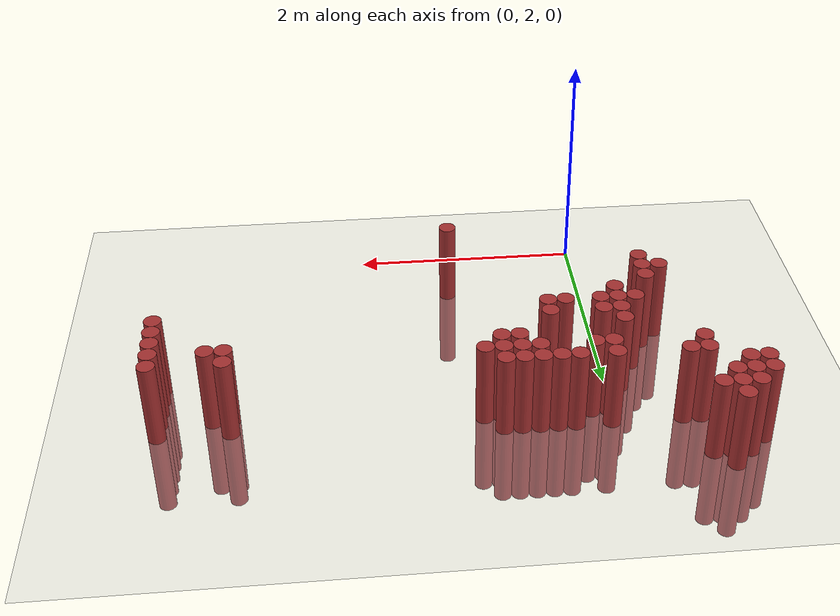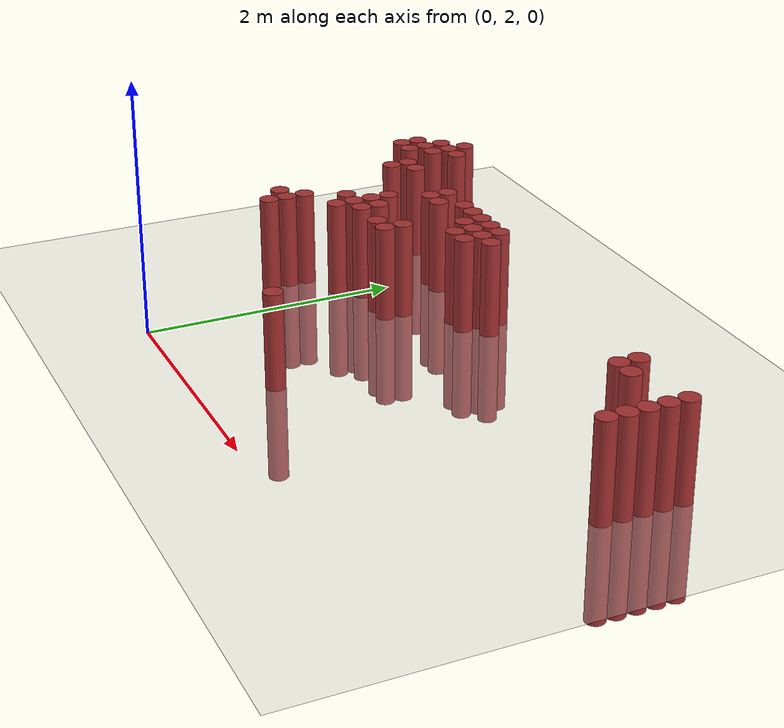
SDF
<sdf version="1.6">
 <world name="default">
  <model name="ground_plane">
   <static>1</static>
   <link name="link">
    <collision name="collision">
     <geometry><plane><normal>0 0 1</normal><size>100 100</size></plane></geometry>
     <surface><friction><ode><mu>100</mu><mu2>50</mu2></ode></friction></surface>
    </collision>
    <visual name="visual">
     <cast_shadows>0</cast_shadows>
     <geometry><plane><normal>0 0 1</normal><size>100 100</size></plane></geometry>
     <material>
      <script><uri>file://media/materials/scripts/gazebo.material</uri><name>Gazebo/Grey</name></script>
     </material>
    </visual>
   </link>
  </model>
  <model name="unit_cylinder_327">
   <static>1</static>
   <pose>-1.175000 4.675000 0.000000 0.000000 0.000000 0.000000</pose>
   <link name="link">
    <inertial>
     <mass>1</mass>
     <inertia><ixx>0.145833</ixx><ixy>0</ixy><ixz>0</ixz><iyy>0.145833</iyy><iyz>0</iyz><izz>0.125</izz></inertia>
    </inertial>
    <collision name="collision">
     <geometry><cylinder><radius>0.075000</radius><length>1.5</length></cylinder></geometry>
    </collision>
    <visual name="visual">
     <geometry><cylinder><radius>0.075000</radius><length>1.5</length></cylinder></geometry>
     <material>
      <ambient>0.648000 0.192000 0.192000 1</ambient>
      <diffuse>0.648000 0.192000 0.192000 1</diffuse>
     </material>
     <material>
      <script><name>Gazebo/Grey</name><uri>file://media/materials/scripts/gazebo.material</uri></script>
     </material>
    </visual>
   </link>
  </model>
  <model name="unit_cylinder_328">
   <static>1</static>
   <pose>-1.175000 4.825000 0.000000 0.000000 0.000000 0.000000</pose>
   <link name="link">
    <inertial>
     <mass>1</mass>
     <inertia><ixx>0.145833</ixx><ixy>0</ixy><ixz>0</ixz><iyy>0.145833</iyy><iyz>0</iyz><izz>0.125</izz></inertia>
    </inertial>
    <collision name="collision">
     <geometry><cylinder><radius>0.075000</radius><length>1.5</length></cylinder></geometry>
    </collision>
    <visual name="visual">
     <geometry><cylinder><radius>0.075000</radius><length>1.5</length></cylinder></geometry>
     <material>
      <ambient>0.648000 0.192000 0.192000 1</ambient>
      <diffuse>0.648000 0.192000 0.192000 1</diffuse>
     </material>
     <material>
      <script><name>Gazebo/Grey</name><uri>file://media/materials/scripts/gazebo.material</uri></script>
     </material>
    </visual>
   </link>
  </model>
  <model name="unit_cylinder_329">
   <static>1</static>
   <pose>-1.025000 4.675000 0.000000 0.000000 0.000000 0.000000</pose>
   <link name="link">
    <inertial>
     <mass>1</mass>
     <inertia><ixx>0.145833</ixx><ixy>0</ixy><ixz>0</ixz><iyy>0.145833</iyy><iyz>0</iyz><izz>0.125</izz></inertia>
    </inertial>
    <collision name="collision">
     <geometry><cylinder><radius>0.075000</radius><length>1.5</length></cylinder></geometry>
    </collision>
    <visual name="visual">
     <geometry><cylinder><radius>0.075000</radius><length>1.5</length></cylinder></geometry>
     <material>
      <ambient>0.648000 0.192000 0.192000 1</ambient>
      <diffuse>0.648000 0.192000 0.192000 1</diffuse>
     </material>
     <material>
      <script><name>Gazebo/Grey</name><uri>file://media/materials/scripts/gazebo.material</uri></script>
     </material>
    </visual>
   </link>
  </model>
  <model name="unit_cylinder_330">
   <static>1</static>
   <pose>-1.025000 4.825000 0.000000 0.000000 0.000000 0.000000</pose>
   <link name="link">
    <inertial>
     <mass>1</mass>
     <inertia><ixx>0.145833</ixx><ixy>0</ixy><ixz>0</ixz><iyy>0.145833</iyy><iyz>0</iyz><izz>0.125</izz></inertia>
    </inertial>
    <collision name="collision">
     <geometry><cylinder><radius>0.075000</radius><length>1.5</length></cylinder></geometry>
    </collision>
    <visual name="visual">
     <geometry><cylinder><radius>0.075000</radius><length>1.5</length></cylinder></geometry>
     <material>
      <ambient>0.648000 0.192000 0.192000 1</ambient>
      <diffuse>0.648000 0.192000 0.192000 1</diffuse>
     </material>
     <material>
      <script><name>Gazebo/Grey</name><uri>file://media/materials/scripts/gazebo.material</uri></script>
     </material>
    </visual>
   </link>
  </model>
  <model name="unit_cylinder_331">
   <static>1</static>
   <pose>-1.025000 4.975000 0.000000 0.000000 0.000000 0.000000</pose>
   <link name="link">
    <inertial>
     <mass>1</mass>
     <inertia><ixx>0.145833</ixx><ixy>0</ixy><ixz>0</ixz><iyy>0.145833</iyy><iyz>0</iyz><izz>0.125</izz></inertia>
    </inertial>
    <collision name="collision">
     <geometry><cylinder><radius>0.075000</radius><length>1.5</length></cylinder></geometry>
    </collision>
    <visual name="visual">
     <geometry><cylinder><radius>0.075000</radius><length>1.5</length></cylinder></geometry>
     <material>
      <ambient>0.648000 0.192000 0.192000 1</ambient>
      <diffuse>0.648000 0.192000 0.192000 1</diffuse>
     </material>
     <material>
      <script><name>Gazebo/Grey</name><uri>file://media/materials/scripts/gazebo.material</uri></script>
     </material>
    </visual>
   </link>
  </model>
  <model name="unit_cylinder_334">
   <static>1</static>
   <pose>-0.875000 4.825000 0.000000 0.000000 0.000000 0.000000</pose>
   <link name="link">
    <inertial>
     <mass>1</mass>
     <inertia><ixx>0.145833</ixx><ixy>0</ixy><ixz>0</ixz><iyy>0.145833</iyy><iyz>0</iyz><izz>0.125</izz></inertia>
    </inertial>
    <collision name="collision">
     <geometry><cylinder><radius>0.075000</radius><length>1.5</length></cylinder></geometry>
    </collision>
    <visual name="visual">
     <geometry><cylinder><radius>0.075000</radius><length>1.5</length></cylinder></geometry>
     <material>
      <ambient>0.648000 0.192000 0.192000 1</ambient>
      <diffuse>0.648000 0.192000 0.192000 1</diffuse>
     </material>
     <material>
      <script><name>Gazebo/Grey</name><uri>file://media/materials/scripts/gazebo.material</uri></script>
     </material>
    </visual>
   </link>
  </model>
  <model name="unit_cylinder_335">
   <static>1</static>
   <pose>-0.875000 4.975000 0.000000 0.000000 0.000000 0.000000</pose>
   <link name="link">
    <inertial>
     <mass>1</mass>
     <inertia><ixx>0.145833</ixx><ixy>0</ixy><ixz>0</ixz><iyy>0.145833</iyy><iyz>0</iyz><izz>0.125</izz></inertia>
    </inertial>
    <collision name="collision">
     <geometry><cylinder><radius>0.075000</radius><length>1.5</length></cylinder></geometry>
    </collision>
    <visual name="visual">
     <geometry><cylinder><radius>0.075000</radius><length>1.5</length></cylinder></geometry>
     <material>
      <ambient>0.648000 0.192000 0.192000 1</ambient>
      <diffuse>0.648000 0.192000 0.192000 1</diffuse>
     </material>
     <material>
      <script><name>Gazebo/Grey</name><uri>file://media/materials/scripts/gazebo.material</uri></script>
     </material>
    </visual>
   </link>
  </model>
  <model name="unit_cylinder_336">
   <static>1</static>
   <pose>-0.875000 5.125000 0.000000 0.000000 0.000000 0.000000</pose>
   <link name="link">
    <inertial>
     <mass>1</mass>
     <inertia><ixx>0.145833</ixx><ixy>0</ixy><ixz>0</ixz><iyy>0.145833</iyy><iyz>0</iyz><izz>0.125</izz></inertia>
    </inertial>
    <collision name="collision">
     <geometry><cylinder><radius>0.075000</radius><length>1.5</length></cylinder></geometry>
    </collision>
    <visual name="visual">
     <geometry><cylinder><radius>0.075000</radius><length>1.5</length></cylinder></geometry>
     <material>
      <ambient>0.648000 0.192000 0.192000 1</ambient>
      <diffuse>0.648000 0.192000 0.192000 1</diffuse>
     </material>
     <material>
      <script><name>Gazebo/Grey</name><uri>file://media/materials/scripts/gazebo.material</uri></script>
     </material>
    </visual>
   </link>
  </model>
  <model name="unit_cylinder_341">
   <static>1</static>
   <pose>-0.725000 4.375000 0.000000 0.000000 0.000000 0.000000</pose>
   <link name="link">
    <inertial>
     <mass>1</mass>
     <inertia><ixx>0.145833</ixx><ixy>0</ixy><ixz>0</ixz><iyy>0.145833</iyy><iyz>0</iyz><izz>0.125</izz></inertia>
    </inertial>
    <collision name="collision">
     <geometry><cylinder><radius>0.075000</radius><length>1.5</length></cylinder></geometry>
    </collision>
    <visual name="visual">
     <geometry><cylinder><radius>0.075000</radius><length>1.5</length></cylinder></geometry>
     <material>
      <ambient>0.648000 0.192000 0.192000 1</ambient>
      <diffuse>0.648000 0.192000 0.192000 1</diffuse>
     </material>
     <material>
      <script><name>Gazebo/Grey</name><uri>file://media/materials/scripts/gazebo.material</uri></script>
     </material>
    </visual>
   </link>
  </model>
  <model name="unit_cylinder_342">
   <static>1</static>
   <pose>-0.725000 4.525000 0.000000 0.000000 0.000000 0.000000</pose>
   <link name="link">
    <inertial>
     <mass>1</mass>
     <inertia><ixx>0.145833</ixx><ixy>0</ixy><ixz>0</ixz><iyy>0.145833</iyy><iyz>0</iyz><izz>0.125</izz></inertia>
    </inertial>
    <collision name="collision">
     <geometry><cylinder><radius>0.075000</radius><length>1.5</length></cylinder></geometry>
    </collision>
    <visual name="visual">
     <geometry><cylinder><radius>0.075000</radius><length>1.5</length></cylinder></geometry>
     <material>
      <ambient>0.648000 0.192000 0.192000 1</ambient>
      <diffuse>0.648000 0.192000 0.192000 1</diffuse>
     </material>
     <material>
      <script><name>Gazebo/Grey</name><uri>file://media/materials/scripts/gazebo.material</uri></script>
     </material>
    </visual>
   </link>
  </model>
  <model name="unit_cylinder_343">
   <static>1</static>
   <pose>-0.725000 4.975000 0.000000 0.000000 0.000000 0.000000</pose>
   <link name="link">
    <inertial>
     <mass>1</mass>
     <inertia><ixx>0.145833</ixx><ixy>0</ixy><ixz>0</ixz><iyy>0.145833</iyy><iyz>0</iyz><izz>0.125</izz></inertia>
    </inertial>
    <collision name="collision">
     <geometry><cylinder><radius>0.075000</radius><length>1.5</length></cylinder></geometry>
    </collision>
    <visual name="visual">
     <geometry><cylinder><radius>0.075000</radius><length>1.5</length></cylinder></geometry>
     <material>
      <ambient>0.648000 0.192000 0.192000 1</ambient>
      <diffuse>0.648000 0.192000 0.192000 1</diffuse>
     </material>
     <material>
      <script><name>Gazebo/Grey</name><uri>file://media/materials/scripts/gazebo.material</uri></script>
     </material>
    </visual>
   </link>
  </model>
  <model name="unit_cylinder_347">
   <static>1</static>
   <pose>-0.575000 3.325000 0.000000 0.000000 0.000000 0.000000</pose>
   <link name="link">
    <inertial>
     <mass>1</mass>
     <inertia><ixx>0.145833</ixx><ixy>0</ixy><ixz>0</ixz><iyy>0.145833</iyy><iyz>0</iyz><izz>0.125</izz></inertia>
    </inertial>
    <collision name="collision">
     <geometry><cylinder><radius>0.075000</radius><length>1.5</length></cylinder></geometry>
    </collision>
    <visual name="visual">
     <geometry><cylinder><radius>0.075000</radius><length>1.5</length></cylinder></geometry>
     <material>
      <ambient>0.648000 0.192000 0.192000 1</ambient>
      <diffuse>0.648000 0.192000 0.192000 1</diffuse>
     </material>
     <material>
      <script><name>Gazebo/Grey</name><uri>file://media/materials/scripts/gazebo.material</uri></script>
     </material>
    </visual>
   </link>
  </model>
  <model name="unit_cylinder_348">
   <static>1</static>
   <pose>-0.575000 4.525000 0.000000 0.000000 0.000000 0.000000</pose>
   <link name="link">
    <inertial>
     <mass>1</mass>
     <inertia><ixx>0.145833</ixx><ixy>0</ixy><ixz>0</ixz><iyy>0.145833</iyy><iyz>0</iyz><izz>0.125</izz></inertia>
    </inertial>
    <collision name="collision">
     <geometry><cylinder><radius>0.075000</radius><length>1.5</length></cylinder></geometry>
    </collision>
    <visual name="visual">
     <geometry><cylinder><radius>0.075000</radius><length>1.5</length></cylinder></geometry>
     <material>
      <ambient>0.648000 0.192000 0.192000 1</ambient>
      <diffuse>0.648000 0.192000 0.192000 1</diffuse>
     </material>
     <material>
      <script><name>Gazebo/Grey</name><uri>file://media/materials/scripts/gazebo.material</uri></script>
     </material>
    </visual>
   </link>
  </model>
  <model name="unit_cylinder_351">
   <static>1</static>
   <pose>-0.425000 3.175000 0.000000 0.000000 0.000000 0.000000</pose>
   <link name="link">
    <inertial>
     <mass>1</mass>
     <inertia><ixx>0.145833</ixx><ixy>0</ixy><ixz>0</ixz><iyy>0.145833</iyy><iyz>0</iyz><izz>0.125</izz></inertia>
    </inertial>
    <collision name="collision">
     <geometry><cylinder><radius>0.075000</radius><length>1.5</length></cylinder></geometry>
    </collision>
    <visual name="visual">
     <geometry><cylinder><radius>0.075000</radius><length>1.5</length></cylinder></geometry>
     <material>
      <ambient>0.648000 0.192000 0.192000 1</ambient>
      <diffuse>0.648000 0.192000 0.192000 1</diffuse>
     </material>
     <material>
      <script><name>Gazebo/Grey</name><uri>file://media/materials/scripts/gazebo.material</uri></script>
     </material>
    </visual>
   </link>
  </model>
  <model name="unit_cylinder_352">
   <static>1</static>
   <pose>-0.425000 3.325000 0.000000 0.000000 0.000000 0.000000</pose>
   <link name="link">
    <inertial>
     <mass>1</mass>
     <inertia><ixx>0.145833</ixx><ixy>0</ixy><ixz>0</ixz><iyy>0.145833</iyy><iyz>0</iyz><izz>0.125</izz></inertia>
    </inertial>
    <collision name="collision">
     <geometry><cylinder><radius>0.075000</radius><length>1.5</length></cylinder></geometry>
    </collision>
    <visual name="visual">
     <geometry><cylinder><radius>0.075000</radius><length>1.5</length></cylinder></geometry>
     <material>
      <ambient>0.648000 0.192000 0.192000 1</ambient>
      <diffuse>0.648000 0.192000 0.192000 1</diffuse>
     </material>
     <material>
      <script><name>Gazebo/Grey</name><uri>file://media/materials/scripts/gazebo.material</uri></script>
     </material>
    </visual>
   </link>
  </model>
  <model name="unit_cylinder_353">
   <static>1</static>
   <pose>-0.425000 3.475000 0.000000 0.000000 0.000000 0.000000</pose>
   <link name="link">
    <inertial>
     <mass>1</mass>
     <inertia><ixx>0.145833</ixx><ixy>0</ixy><ixz>0</ixz><iyy>0.145833</iyy><iyz>0</iyz><izz>0.125</izz></inertia>
    </inertial>
    <collision name="collision">
     <geometry><cylinder><radius>0.075000</radius><length>1.5</length></cylinder></geometry>
    </collision>
    <visual name="visual">
     <geometry><cylinder><radius>0.075000</radius><length>1.5</length></cylinder></geometry>
     <material>
      <ambient>0.648000 0.192000 0.192000 1</ambient>
      <diffuse>0.648000 0.192000 0.192000 1</diffuse>
     </material>
     <material>
      <script><name>Gazebo/Grey</name><uri>file://media/materials/scripts/gazebo.material</uri></script>
     </material>
    </visual>
   </link>
  </model>
  <model name="unit_cylinder_356">
   <static>1</static>
   <pose>-0.275000 3.775000 0.000000 0.000000 0.000000 0.000000</pose>
   <link name="link">
    <inertial>
     <mass>1</mass>
     <inertia><ixx>0.145833</ixx><ixy>0</ixy><ixz>0</ixz><iyy>0.145833</iyy><iyz>0</iyz><izz>0.125</izz></inertia>
    </inertial>
    <collision name="collision">
     <geometry><cylinder><radius>0.075000</radius><length>1.5</length></cylinder></geometry>
    </collision>
    <visual name="visual">
     <geometry><cylinder><radius>0.075000</radius><length>1.5</length></cylinder></geometry>
     <material>
      <ambient>0.648000 0.192000 0.192000 1</ambient>
      <diffuse>0.648000 0.192000 0.192000 1</diffuse>
     </material>
     <material>
      <script><name>Gazebo/Grey</name><uri>file://media/materials/scripts/gazebo.material</uri></script>
     </material>
    </visual>
   </link>
  </model>
  <model name="unit_cylinder_358">
   <static>1</static>
   <pose>-0.125000 3.625000 0.000000 0.000000 0.000000 0.000000</pose>
   <link name="link">
    <inertial>
     <mass>1</mass>
     <inertia><ixx>0.145833</ixx><ixy>0</ixy><ixz>0</ixz><iyy>0.145833</iyy><iyz>0</iyz><izz>0.125</izz></inertia>
    </inertial>
    <collision name="collision">
     <geometry><cylinder><radius>0.075000</radius><length>1.5</length></cylinder></geometry>
    </collision>
    <visual name="visual">
     <geometry><cylinder><radius>0.075000</radius><length>1.5</length></cylinder></geometry>
     <material>
      <ambient>0.648000 0.192000 0.192000 1</ambient>
      <diffuse>0.648000 0.192000 0.192000 1</diffuse>
     </material>
     <material>
      <script><name>Gazebo/Grey</name><uri>file://media/materials/scripts/gazebo.material</uri></script>
     </material>
    </visual>
   </link>
  </model>
  <model name="unit_cylinder_359">
   <static>1</static>
   <pose>-0.125000 3.775000 0.000000 0.000000 0.000000 0.000000</pose>
   <link name="link">
    <inertial>
     <mass>1</mass>
     <inertia><ixx>0.145833</ixx><ixy>0</ixy><ixz>0</ixz><iyy>0.145833</iyy><iyz>0</iyz><izz>0.125</izz></inertia>
    </inertial>
    <collision name="collision">
     <geometry><cylinder><radius>0.075000</radius><length>1.5</length></cylinder></geometry>
    </collision>
    <visual name="visual">
     <geometry><cylinder><radius>0.075000</radius><length>1.5</length></cylinder></geometry>
     <material>
      <ambient>0.648000 0.192000 0.192000 1</ambient>
      <diffuse>0.648000 0.192000 0.192000 1</diffuse>
     </material>
     <material>
      <script><name>Gazebo/Grey</name><uri>file://media/materials/scripts/gazebo.material</uri></script>
     </material>
    </visual>
   </link>
  </model>
  <model name="unit_cylinder_360">
   <static>1</static>
   <pose>-0.125000 3.925000 0.000000 0.000000 0.000000 0.000000</pose>
   <link name="link">
    <inertial>
     <mass>1</mass>
     <inertia><ixx>0.145833</ixx><ixy>0</ixy><ixz>0</ixz><iyy>0.145833</iyy><iyz>0</iyz><izz>0.125</izz></inertia>
    </inertial>
    <collision name="collision">
     <geometry><cylinder><radius>0.075000</radius><length>1.5</length></cylinder></geometry>
    </collision>
    <visual name="visual">
     <geometry><cylinder><radius>0.075000</radius><length>1.5</length></cylinder></geometry>
     <material>
      <ambient>0.648000 0.192000 0.192000 1</ambient>
      <diffuse>0.648000 0.192000 0.192000 1</diffuse>
     </material>
     <material>
      <script><name>Gazebo/Grey</name><uri>file://media/materials/scripts/gazebo.material</uri></script>
     </material>
    </visual>
   </link>
  </model>
  <model name="unit_cylinder_361">
   <static>1</static>
   <pose>-0.125000 4.075000 0.000000 0.000000 0.000000 0.000000</pose>
   <link name="link">
    <inertial>
     <mass>1</mass>
     <inertia><ixx>0.145833</ixx><ixy>0</ixy><ixz>0</ixz><iyy>0.145833</iyy><iyz>0</iyz><izz>0.125</izz></inertia>
    </inertial>
    <collision name="collision">
     <geometry><cylinder><radius>0.075000</radius><length>1.5</length></cylinder></geometry>
    </collision>
    <visual name="visual">
     <geometry><cylinder><radius>0.075000</radius><length>1.5</length></cylinder></geometry>
     <material>
      <ambient>0.648000 0.192000 0.192000 1</ambient>
      <diffuse>0.648000 0.192000 0.192000 1</diffuse>
     </material>
     <material>
      <script><name>Gazebo/Grey</name><uri>file://media/materials/scripts/gazebo.material</uri></script>
     </material>
    </visual>
   </link>
  </model>
  <model name="unit_cylinder_365">
   <static>1</static>
   <pose>0.025000 3.775000 0.000000 0.000000 0.000000 0.000000</pose>
   <link name="link">
    <inertial>
     <mass>1</mass>
     <inertia><ixx>0.145833</ixx><ixy>0</ixy><ixz>0</ixz><iyy>0.145833</iyy><iyz>0</iyz><izz>0.125</izz></inertia>
    </inertial>
    <collision name="collision">
     <geometry><cylinder><radius>0.075000</radius><length>1.5</length></cylinder></geometry>
    </collision>
    <visual name="visual">
     <geometry><cylinder><radius>0.075000</radius><length>1.5</length></cylinder></geometry>
     <material>
      <ambient>0.648000 0.192000 0.192000 1</ambient>
      <diffuse>0.648000 0.192000 0.192000 1</diffuse>
     </material>
     <material>
      <script><name>Gazebo/Grey</name><uri>file://media/materials/scripts/gazebo.material</uri></script>
     </material>
    </visual>
   </link>
  </model>
  <model name="unit_cylinder_366">
   <static>1</static>
   <pose>0.025000 3.925000 0.000000 0.000000 0.000000 0.000000</pose>
   <link name="link">
    <inertial>
     <mass>1</mass>
     <inertia><ixx>0.145833</ixx><ixy>0</ixy><ixz>0</ixz><iyy>0.145833</iyy><iyz>0</iyz><izz>0.125</izz></inertia>
    </inertial>
    <collision name="collision">
     <geometry><cylinder><radius>0.075000</radius><length>1.5</length></cylinder></geometry>
    </collision>
    <visual name="visual">
     <geometry><cylinder><radius>0.075000</radius><length>1.5</length></cylinder></geometry>
     <material>
      <ambient>0.648000 0.192000 0.192000 1</ambient>
      <diffuse>0.648000 0.192000 0.192000 1</diffuse>
     </material>
     <material>
      <script><name>Gazebo/Grey</name><uri>file://media/materials/scripts/gazebo.material</uri></script>
     </material>
    </visual>
   </link>
  </model>
  <model name="unit_cylinder_367">
   <static>1</static>
   <pose>0.025000 4.375000 0.000000 0.000000 0.000000 0.000000</pose>
   <link name="link">
    <inertial>
     <mass>1</mass>
     <inertia><ixx>0.145833</ixx><ixy>0</ixy><ixz>0</ixz><iyy>0.145833</iyy><iyz>0</iyz><izz>0.125</izz></inertia>
    </inertial>
    <collision name="collision">
     <geometry><cylinder><radius>0.075000</radius><length>1.5</length></cylinder></geometry>
    </collision>
    <visual name="visual">
     <geometry><cylinder><radius>0.075000</radius><length>1.5</length></cylinder></geometry>
     <material>
      <ambient>0.648000 0.192000 0.192000 1</ambient>
      <diffuse>0.648000 0.192000 0.192000 1</diffuse>
     </material>
     <material>
      <script><name>Gazebo/Grey</name><uri>file://media/materials/scripts/gazebo.material</uri></script>
     </material>
    </visual>
   </link>
  </model>
  <model name="unit_cylinder_368">
   <static>1</static>
   <pose>0.025000 4.525000 0.000000 0.000000 0.000000 0.000000</pose>
   <link name="link">
    <inertial>
     <mass>1</mass>
     <inertia><ixx>0.145833</ixx><ixy>0</ixy><ixz>0</ixz><iyy>0.145833</iyy><iyz>0</iyz><izz>0.125</izz></inertia>
    </inertial>
    <collision name="collision">
     <geometry><cylinder><radius>0.075000</radius><length>1.5</length></cylinder></geometry>
    </collision>
    <visual name="visual">
     <geometry><cylinder><radius>0.075000</radius><length>1.5</length></cylinder></geometry>
     <material>
      <ambient>0.648000 0.192000 0.192000 1</ambient>
      <diffuse>0.648000 0.192000 0.192000 1</diffuse>
     </material>
     <material>
      <script><name>Gazebo/Grey</name><uri>file://media/materials/scripts/gazebo.material</uri></script>
     </material>
    </visual>
   </link>
  </model>
  <model name="unit_cylinder_374">
   <static>1</static>
   <pose>0.175000 4.375000 0.000000 0.000000 0.000000 0.000000</pose>
   <link name="link">
    <inertial>
     <mass>1</mass>
     <inertia><ixx>0.145833</ixx><ixy>0</ixy><ixz>0</ixz><iyy>0.145833</iyy><iyz>0</iyz><izz>0.125</izz></inertia>
    </inertial>
    <collision name="collision">
     <geometry><cylinder><radius>0.075000</radius><length>1.5</length></cylinder></geometry>
    </collision>
    <visual name="visual">
     <geometry><cylinder><radius>0.075000</radius><length>1.5</length></cylinder></geometry>
     <material>
      <ambient>0.648000 0.192000 0.192000 1</ambient>
      <diffuse>0.648000 0.192000 0.192000 1</diffuse>
     </material>
     <material>
      <script><name>Gazebo/Grey</name><uri>file://media/materials/scripts/gazebo.material</uri></script>
     </material>
    </visual>
   </link>
  </model>
  <model name="unit_cylinder_381">
   <static>1</static>
   <pose>0.325000 3.775000 0.000000 0.000000 0.000000 0.000000</pose>
   <link name="link">
    <inertial>
     <mass>1</mass>
     <inertia><ixx>0.145833</ixx><ixy>0</ixy><ixz>0</ixz><iyy>0.145833</iyy><iyz>0</iyz><izz>0.125</izz></inertia>
    </inertial>
    <collision name="collision">
     <geometry><cylinder><radius>0.075000</radius><length>1.5</length></cylinder></geometry>
    </collision>
    <visual name="visual">
     <geometry><cylinder><radius>0.075000</radius><length>1.5</length></cylinder></geometry>
     <material>
      <ambient>0.648000 0.192000 0.192000 1</ambient>
      <diffuse>0.648000 0.192000 0.192000 1</diffuse>
     </material>
     <material>
      <script><name>Gazebo/Grey</name><uri>file://media/materials/scripts/gazebo.material</uri></script>
     </material>
    </visual>
   </link>
  </model>
  <model name="unit_cylinder_382">
   <static>1</static>
   <pose>0.325000 4.525000 0.000000 0.000000 0.000000 0.000000</pose>
   <link name="link">
    <inertial>
     <mass>1</mass>
     <inertia><ixx>0.145833</ixx><ixy>0</ixy><ixz>0</ixz><iyy>0.145833</iyy><iyz>0</iyz><izz>0.125</izz></inertia>
    </inertial>
    <collision name="collision">
     <geometry><cylinder><radius>0.075000</radius><length>1.5</length></cylinder></geometry>
    </collision>
    <visual name="visual">
     <geometry><cylinder><radius>0.075000</radius><length>1.5</length></cylinder></geometry>
     <material>
      <ambient>0.648000 0.192000 0.192000 1</ambient>
      <diffuse>0.648000 0.192000 0.192000 1</diffuse>
     </material>
     <material>
      <script><name>Gazebo/Grey</name><uri>file://media/materials/scripts/gazebo.material</uri></script>
     </material>
    </visual>
   </link>
  </model>
  <model name="unit_cylinder_384">
   <static>1</static>
   <pose>0.475000 3.775000 0.000000 0.000000 0.000000 0.000000</pose>
   <link name="link">
    <inertial>
     <mass>1</mass>
     <inertia><ixx>0.145833</ixx><ixy>0</ixy><ixz>0</ixz><iyy>0.145833</iyy><iyz>0</iyz><izz>0.125</izz></inertia>
    </inertial>
    <collision name="collision">
     <geometry><cylinder><radius>0.075000</radius><length>1.5</length></cylinder></geometry>
    </collision>
    <visual name="visual">
     <geometry><cylinder><radius>0.075000</radius><length>1.5</length></cylinder></geometry>
     <material>
      <ambient>0.648000 0.192000 0.192000 1</ambient>
      <diffuse>0.648000 0.192000 0.192000 1</diffuse>
     </material>
     <material>
      <script><name>Gazebo/Grey</name><uri>file://media/materials/scripts/gazebo.material</uri></script>
     </material>
    </visual>
   </link>
  </model>
  <model name="unit_cylinder_385">
   <static>1</static>
   <pose>0.475000 3.925000 0.000000 0.000000 0.000000 0.000000</pose>
   <link name="link">
    <inertial>
     <mass>1</mass>
     <inertia><ixx>0.145833</ixx><ixy>0</ixy><ixz>0</ixz><iyy>0.145833</iyy><iyz>0</iyz><izz>0.125</izz></inertia>
    </inertial>
    <collision name="collision">
     <geometry><cylinder><radius>0.075000</radius><length>1.5</length></cylinder></geometry>
    </collision>
    <visual name="visual">
     <geometry><cylinder><radius>0.075000</radius><length>1.5</length></cylinder></geometry>
     <material>
      <ambient>0.648000 0.192000 0.192000 1</ambient>
      <diffuse>0.648000 0.192000 0.192000 1</diffuse>
     </material>
     <material>
      <script><name>Gazebo/Grey</name><uri>file://media/materials/scripts/gazebo.material</uri></script>
     </material>
    </visual>
   </link>
  </model>
  <model name="unit_cylinder_386">
   <static>1</static>
   <pose>0.475000 4.525000 0.000000 0.000000 0.000000 0.000000</pose>
   <link name="link">
    <inertial>
     <mass>1</mass>
     <inertia><ixx>0.145833</ixx><ixy>0</ixy><ixz>0</ixz><iyy>0.145833</iyy><iyz>0</iyz><izz>0.125</izz></inertia>
    </inertial>
    <collision name="collision">
     <geometry><cylinder><radius>0.075000</radius><length>1.5</length></cylinder></geometry>
    </collision>
    <visual name="visual">
     <geometry><cylinder><radius>0.075000</radius><length>1.5</length></cylinder></geometry>
     <material>
      <ambient>0.648000 0.192000 0.192000 1</ambient>
      <diffuse>0.648000 0.192000 0.192000 1</diffuse>
     </material>
     <material>
      <script><name>Gazebo/Grey</name><uri>file://media/materials/scripts/gazebo.material</uri></script>
     </material>
    </visual>
   </link>
  </model>
  <model name="unit_cylinder_387">
   <static>1</static>
   <pose>0.625000 4.375000 0.000000 0.000000 0.000000 0.000000</pose>
   <link name="link">
    <inertial>
     <mass>1</mass>
     <inertia><ixx>0.145833</ixx><ixy>0</ixy><ixz>0</ixz><iyy>0.145833</iyy><iyz>0</iyz><izz>0.125</izz></inertia>
    </inertial>
    <collision name="collision">
     <geometry><cylinder><radius>0.075000</radius><length>1.5</length></cylinder></geometry>
    </collision>
    <visual name="visual">
     <geometry><cylinder><radius>0.075000</radius><length>1.5</length></cylinder></geometry>
     <material>
      <ambient>0.648000 0.192000 0.192000 1</ambient>
      <diffuse>0.648000 0.192000 0.192000 1</diffuse>
     </material>
     <material>
      <script><name>Gazebo/Grey</name><uri>file://media/materials/scripts/gazebo.material</uri></script>
     </material>
    </visual>
   </link>
  </model>
  <model name="unit_cylinder_388">
   <static>1</static>
   <pose>0.625000 4.525000 0.000000 0.000000 0.000000 0.000000</pose>
   <link name="link">
    <inertial>
     <mass>1</mass>
     <inertia><ixx>0.145833</ixx><ixy>0</ixy><ixz>0</ixz><iyy>0.145833</iyy><iyz>0</iyz><izz>0.125</izz></inertia>
    </inertial>
    <collision name="collision">
     <geometry><cylinder><radius>0.075000</radius><length>1.5</length></cylinder></geometry>
    </collision>
    <visual name="visual">
     <geometry><cylinder><radius>0.075000</radius><length>1.5</length></cylinder></geometry>
     <material>
      <ambient>0.648000 0.192000 0.192000 1</ambient>
      <diffuse>0.648000 0.192000 0.192000 1</diffuse>
     </material>
     <material>
      <script><name>Gazebo/Grey</name><uri>file://media/materials/scripts/gazebo.material</uri></script>
     </material>
    </visual>
   </link>
  </model>
  <model name="unit_cylinder_389">
   <static>1</static>
   <pose>0.775000 4.225000 0.000000 0.000000 0.000000 0.000000</pose>
   <link name="link">
    <inertial>
     <mass>1</mass>
     <inertia><ixx>0.145833</ixx><ixy>0</ixy><ixz>0</ixz><iyy>0.145833</iyy><iyz>0</iyz><izz>0.125</izz></inertia>
    </inertial>
    <collision name="collision">
     <geometry><cylinder><radius>0.075000</radius><length>1.5</length></cylinder></geometry>
    </collision>
    <visual name="visual">
     <geometry><cylinder><radius>0.075000</radius><length>1.5</length></cylinder></geometry>
     <material>
      <ambient>0.648000 0.192000 0.192000 1</ambient>
      <diffuse>0.648000 0.192000 0.192000 1</diffuse>
     </material>
     <material>
      <script><name>Gazebo/Grey</name><uri>file://media/materials/scripts/gazebo.material</uri></script>
     </material>
    </visual>
   </link>
  </model>
  <model name="unit_cylinder_390">
   <static>1</static>
   <pose>0.775000 4.375000 0.000000 0.000000 0.000000 0.000000</pose>
   <link name="link">
    <inertial>
     <mass>1</mass>
     <inertia><ixx>0.145833</ixx><ixy>0</ixy><ixz>0</ixz><iyy>0.145833</iyy><iyz>0</iyz><izz>0.125</izz></inertia>
    </inertial>
    <collision name="collision">
     <geometry><cylinder><radius>0.075000</radius><length>1.5</length></cylinder></geometry>
    </collision>
    <visual name="visual">
     <geometry><cylinder><radius>0.075000</radius><length>1.5</length></cylinder></geometry>
     <material>
      <ambient>0.648000 0.192000 0.192000 1</ambient>
      <diffuse>0.648000 0.192000 0.192000 1</diffuse>
     </material>
     <material>
      <script><name>Gazebo/Grey</name><uri>file://media/materials/scripts/gazebo.material</uri></script>
     </material>
    </visual>
   </link>
  </model>
  <model name="unit_cylinder_391">
   <static>1</static>
   <pose>0.775000 4.525000 0.000000 0.000000 0.000000 0.000000</pose>
   <link name="link">
    <inertial>
     <mass>1</mass>
     <inertia><ixx>0.145833</ixx><ixy>0</ixy><ixz>0</ixz><iyy>0.145833</iyy><iyz>0</iyz><izz>0.125</izz></inertia>
    </inertial>
    <collision name="collision">
     <geometry><cylinder><radius>0.075000</radius><length>1.5</length></cylinder></geometry>
    </collision>
    <visual name="visual">
     <geometry><cylinder><radius>0.075000</radius><length>1.5</length></cylinder></geometry>
     <material>
      <ambient>0.648000 0.192000 0.192000 1</ambient>
      <diffuse>0.648000 0.192000 0.192000 1</diffuse>
     </material>
     <material>
      <script><name>Gazebo/Grey</name><uri>file://media/materials/scripts/gazebo.material</uri></script>
     </material>
    </visual>
   </link>
  </model>
  <model name="unit_cylinder_394">
   <static>1</static>
   <pose>0.925000 4.225000 0.000000 0.000000 0.000000 0.000000</pose>
   <link name="link">
    <inertial>
     <mass>1</mass>
     <inertia><ixx>0.145833</ixx><ixy>0</ixy><ixz>0</ixz><iyy>0.145833</iyy><iyz>0</iyz><izz>0.125</izz></inertia>
    </inertial>
    <collision name="collision">
     <geometry><cylinder><radius>0.075000</radius><length>1.5</length></cylinder></geometry>
    </collision>
    <visual name="visual">
     <geometry><cylinder><radius>0.075000</radius><length>1.5</length></cylinder></geometry>
     <material>
      <ambient>0.648000 0.192000 0.192000 1</ambient>
      <diffuse>0.648000 0.192000 0.192000 1</diffuse>
     </material>
     <material>
      <script><name>Gazebo/Grey</name><uri>file://media/materials/scripts/gazebo.material</uri></script>
     </material>
    </visual>
   </link>
  </model>
  <model name="unit_cylinder_395">
   <static>1</static>
   <pose>0.925000 4.375000 0.000000 0.000000 0.000000 0.000000</pose>
   <link name="link">
    <inertial>
     <mass>1</mass>
     <inertia><ixx>0.145833</ixx><ixy>0</ixy><ixz>0</ixz><iyy>0.145833</iyy><iyz>0</iyz><izz>0.125</izz></inertia>
    </inertial>
    <collision name="collision">
     <geometry><cylinder><radius>0.075000</radius><length>1.5</length></cylinder></geometry>
    </collision>
    <visual name="visual">
     <geometry><cylinder><radius>0.075000</radius><length>1.5</length></cylinder></geometry>
     <material>
      <ambient>0.648000 0.192000 0.192000 1</ambient>
      <diffuse>0.648000 0.192000 0.192000 1</diffuse>
     </material>
     <material>
      <script><name>Gazebo/Grey</name><uri>file://media/materials/scripts/gazebo.material</uri></script>
     </material>
    </visual>
   </link>
  </model>
  <model name="unit_cylinder_396">
   <static>1</static>
   <pose>0.925000 4.525000 0.000000 0.000000 0.000000 0.000000</pose>
   <link name="link">
    <inertial>
     <mass>1</mass>
     <inertia><ixx>0.145833</ixx><ixy>0</ixy><ixz>0</ixz><iyy>0.145833</iyy><iyz>0</iyz><izz>0.125</izz></inertia>
    </inertial>
    <collision name="collision">
     <geometry><cylinder><radius>0.075000</radius><length>1.5</length></cylinder></geometry>
    </collision>
    <visual name="visual">
     <geometry><cylinder><radius>0.075000</radius><length>1.5</length></cylinder></geometry>
     <material>
      <ambient>0.648000 0.192000 0.192000 1</ambient>
      <diffuse>0.648000 0.192000 0.192000 1</diffuse>
     </material>
     <material>
      <script><name>Gazebo/Grey</name><uri>file://media/materials/scripts/gazebo.material</uri></script>
     </material>
    </visual>
   </link>
  </model>
  <model name="unit_cylinder_398">
   <static>1</static>
   <pose>1.075000 4.375000 0.000000 0.000000 0.000000 0.000000</pose>
   <link name="link">
    <inertial>
     <mass>1</mass>
     <inertia><ixx>0.145833</ixx><ixy>0</ixy><ixz>0</ixz><iyy>0.145833</iyy><iyz>0</iyz><izz>0.125</izz></inertia>
    </inertial>
    <collision name="collision">
     <geometry><cylinder><radius>0.075000</radius><length>1.5</length></cylinder></geometry>
    </collision>
    <visual name="visual">
     <geometry><cylinder><radius>0.075000</radius><length>1.5</length></cylinder></geometry>
     <material>
      <ambient>0.648000 0.192000 0.192000 1</ambient>
      <diffuse>0.648000 0.192000 0.192000 1</diffuse>
     </material>
     <material>
      <script><name>Gazebo/Grey</name><uri>file://media/materials/scripts/gazebo.material</uri></script>
     </material>
    </visual>
   </link>
  </model>
  <model name="unit_cylinder_400">
   <static>1</static>
   <pose>1.225000 2.575000 0.000000 0.000000 0.000000 0.000000</pose>
   <link name="link">
    <inertial>
     <mass>1</mass>
     <inertia><ixx>0.145833</ixx><ixy>0</ixy><ixz>0</ixz><iyy>0.145833</iyy><iyz>0</iyz><izz>0.125</izz></inertia>
    </inertial>
    <collision name="collision">
     <geometry><cylinder><radius>0.075000</radius><length>1.5</length></cylinder></geometry>
    </collision>
    <visual name="visual">
     <geometry><cylinder><radius>0.075000</radius><length>1.5</length></cylinder></geometry>
     <material>
      <ambient>0.648000 0.192000 0.192000 1</ambient>
      <diffuse>0.648000 0.192000 0.192000 1</diffuse>
     </material>
     <material>
      <script><name>Gazebo/Grey</name><uri>file://media/materials/scripts/gazebo.material</uri></script>
     </material>
    </visual>
   </link>
  </model>
  <model name="unit_cylinder_420">
   <static>1</static>
   <pose>3.175000 4.225000 0.000000 0.000000 0.000000 0.000000</pose>
   <link name="link">
    <inertial>
     <mass>1</mass>
     <inertia><ixx>0.145833</ixx><ixy>0</ixy><ixz>0</ixz><iyy>0.145833</iyy><iyz>0</iyz><izz>0.125</izz></inertia>
    </inertial>
    <collision name="collision">
     <geometry><cylinder><radius>0.075000</radius><length>1.5</length></cylinder></geometry>
    </collision>
    <visual name="visual">
     <geometry><cylinder><radius>0.075000</radius><length>1.5</length></cylinder></geometry>
     <material>
      <ambient>0.648000 0.192000 0.192000 1</ambient>
      <diffuse>0.648000 0.192000 0.192000 1</diffuse>
     </material>
     <material>
      <script><name>Gazebo/Grey</name><uri>file://media/materials/scripts/gazebo.material</uri></script>
     </material>
    </visual>
   </link>
  </model>
  <model name="unit_cylinder_421">
   <static>1</static>
   <pose>3.175000 4.375000 0.000000 0.000000 0.000000 0.000000</pose>
   <link name="link">
    <inertial>
     <mass>1</mass>
     <inertia><ixx>0.145833</ixx><ixy>0</ixy><ixz>0</ixz><iyy>0.145833</iyy><iyz>0</iyz><izz>0.125</izz></inertia>
    </inertial>
    <collision name="collision">
     <geometry><cylinder><radius>0.075000</radius><length>1.5</length></cylinder></geometry>
    </collision>
    <visual name="visual">
     <geometry><cylinder><radius>0.075000</radius><length>1.5</length></cylinder></geometry>
     <material>
      <ambient>0.648000 0.192000 0.192000 1</ambient>
      <diffuse>0.648000 0.192000 0.192000 1</diffuse>
     </material>
     <material>
      <script><name>Gazebo/Grey</name><uri>file://media/materials/scripts/gazebo.material</uri></script>
     </material>
    </visual>
   </link>
  </model>
  <model name="unit_cylinder_423">
   <static>1</static>
   <pose>3.325000 4.225000 0.000000 0.000000 0.000000 0.000000</pose>
   <link name="link">
    <inertial>
     <mass>1</mass>
     <inertia><ixx>0.145833</ixx><ixy>0</ixy><ixz>0</ixz><iyy>0.145833</iyy><iyz>0</iyz><izz>0.125</izz></inertia>
    </inertial>
    <collision name="collision">
     <geometry><cylinder><radius>0.075000</radius><length>1.5</length></cylinder></geometry>
    </collision>
    <visual name="visual">
     <geometry><cylinder><radius>0.075000</radius><length>1.5</length></cylinder></geometry>
     <material>
      <ambient>0.648000 0.192000 0.192000 1</ambient>
      <diffuse>0.648000 0.192000 0.192000 1</diffuse>
     </material>
     <material>
      <script><name>Gazebo/Grey</name><uri>file://media/materials/scripts/gazebo.material</uri></script>
     </material>
    </visual>
   </link>
  </model>
  <model name="unit_cylinder_439">
   <static>1</static>
   <pose>3.775000 3.775000 0.000000 0.000000 0.000000 0.000000</pose>
   <link name="link">
    <inertial>
     <mass>1</mass>
     <inertia><ixx>0.145833</ixx><ixy>0</ixy><ixz>0</ixz><iyy>0.145833</iyy><iyz>0</iyz><izz>0.125</izz></inertia>
    </inertial>
    <collision name="collision">
     <geometry><cylinder><radius>0.075000</radius><length>1.5</length></cylinder></geometry>
    </collision>
    <visual name="visual">
     <geometry><cylinder><radius>0.075000</radius><length>1.5</length></cylinder></geometry>
     <material>
      <ambient>0.648000 0.192000 0.192000 1</ambient>
      <diffuse>0.648000 0.192000 0.192000 1</diffuse>
     </material>
     <material>
      <script><name>Gazebo/Grey</name><uri>file://media/materials/scripts/gazebo.material</uri></script>
     </material>
    </visual>
   </link>
  </model>
  <model name="unit_cylinder_440">
   <static>1</static>
   <pose>3.775000 3.925000 0.000000 0.000000 0.000000 0.000000</pose>
   <link name="link">
    <inertial>
     <mass>1</mass>
     <inertia><ixx>0.145833</ixx><ixy>0</ixy><ixz>0</ixz><iyy>0.145833</iyy><iyz>0</iyz><izz>0.125</izz></inertia>
    </inertial>
    <collision name="collision">
     <geometry><cylinder><radius>0.075000</radius><length>1.5</length></cylinder></geometry>
    </collision>
    <visual name="visual">
     <geometry><cylinder><radius>0.075000</radius><length>1.5</length></cylinder></geometry>
     <material>
      <ambient>0.648000 0.192000 0.192000 1</ambient>
      <diffuse>0.648000 0.192000 0.192000 1</diffuse>
     </material>
     <material>
      <script><name>Gazebo/Grey</name><uri>file://media/materials/scripts/gazebo.material</uri></script>
     </material>
    </visual>
   </link>
  </model>
  <model name="unit_cylinder_441">
   <static>1</static>
   <pose>3.775000 4.075000 0.000000 0.000000 0.000000 0.000000</pose>
   <link name="link">
    <inertial>
     <mass>1</mass>
     <inertia><ixx>0.145833</ixx><ixy>0</ixy><ixz>0</ixz><iyy>0.145833</iyy><iyz>0</iyz><izz>0.125</izz></inertia>
    </inertial>
    <collision name="collision">
     <geometry><cylinder><radius>0.075000</radius><length>1.5</length></cylinder></geometry>
    </collision>
    <visual name="visual">
     <geometry><cylinder><radius>0.075000</radius><length>1.5</length></cylinder></geometry>
     <material>
      <ambient>0.648000 0.192000 0.192000 1</ambient>
      <diffuse>0.648000 0.192000 0.192000 1</diffuse>
     </material>
     <material>
      <script><name>Gazebo/Grey</name><uri>file://media/materials/scripts/gazebo.material</uri></script>
     </material>
    </visual>
   </link>
  </model>
  <model name="unit_cylinder_442">
   <static>1</static>
   <pose>3.775000 4.225000 0.000000 0.000000 0.000000 0.000000</pose>
   <link name="link">
    <inertial>
     <mass>1</mass>
     <inertia><ixx>0.145833</ixx><ixy>0</ixy><ixz>0</ixz><iyy>0.145833</iyy><iyz>0</iyz><izz>0.125</izz></inertia>
    </inertial>
    <collision name="collision">
     <geometry><cylinder><radius>0.075000</radius><length>1.5</length></cylinder></geometry>
    </collision>
    <visual name="visual">
     <geometry><cylinder><radius>0.075000</radius><length>1.5</length></cylinder></geometry>
     <material>
      <ambient>0.648000 0.192000 0.192000 1</ambient>
      <diffuse>0.648000 0.192000 0.192000 1</diffuse>
     </material>
     <material>
      <script><name>Gazebo/Grey</name><uri>file://media/materials/scripts/gazebo.material</uri></script>
     </material>
    </visual>
   </link>
  </model>
  <model name="unit_cylinder_443">
   <static>1</static>
   <pose>3.775000 4.375000 0.000000 0.000000 0.000000 0.000000</pose>
   <link name="link">
    <inertial>
     <mass>1</mass>
     <inertia><ixx>0.145833</ixx><ixy>0</ixy><ixz>0</ixz><iyy>0.145833</iyy><iyz>0</iyz><izz>0.125</izz></inertia>
    </inertial>
    <collision name="collision">
     <geometry><cylinder><radius>0.075000</radius><length>1.5</length></cylinder></geometry>
    </collision>
    <visual name="visual">
     <geometry><cylinder><radius>0.075000</radius><length>1.5</length></cylinder></geometry>
     <material>
      <ambient>0.648000 0.192000 0.192000 1</ambient>
      <diffuse>0.648000 0.192000 0.192000 1</diffuse>
     </material>
     <material>
      <script><name>Gazebo/Grey</name><uri>file://media/materials/scripts/gazebo.material</uri></script>
     </material>
    </visual>
   </link>
  </model>
 </world>
</sdf>
